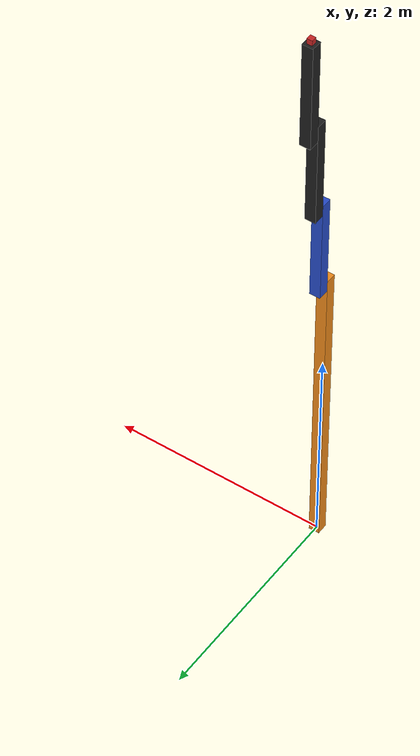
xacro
<?xml version="1.0"?>
<!-- 2 link Manipulator -->
<robot name="2linkrobot" xmlns:xacro="http://www.ros.org/wiki/xacro">

  <!-- Constants for robot dimensions -->
  <xacro:property name="PI" value="3.1415926535897931"/>
  <xacro:property name="mass" value="1" /> <!-- arbitrary value for mass -->
  <xacro:property name="width" value="0.1" /> <!-- Square dimensions (widthxwidth) of beams -->
  <xacro:property name="height1" value="3" /> <!-- Link 1 -->
  <xacro:property name="height2" value="1" /> <!-- Link 2 -->
  <xacro:property name="height3" value="1" /> <!-- Link 3 -->
  <xacro:property name="height4" value="1" /> <!-- Link 3 -->
  <xacro:property name="axel_offset" value="0.05" /> <!-- Space btw top of beam and the each joint -->

  <!-- Used for fixing robot to world -->
  <link name="world"/>

  <joint name="fixed" type="fixed">
    <parent link="world"/>
    <child link="link1"/>
  </joint>

  <!-- Base Link -->
  <link name="link1">
    <collision>
      <origin xyz="0 0 ${height1/2}" rpy="0 0 0"/>
      <geometry>
	<box size="${width} ${width} ${height1}"/>
      </geometry>
    </collision>

    <visual>
      <origin xyz="0 0 ${height1/2}" rpy="0 0 0"/>
      <geometry>
	<box size="${width} ${width} ${height1}"/>
      </geometry>
      <material name="orange"/>
    </visual>

    <inertial>
      <origin xyz="0 0 ${height1/2}" rpy="0 0 0"/>
      <mass value="${mass}"/>
      <inertia
	  ixx="${mass / 12.0 * (width*width + height1*height1)}" ixy="0.0" ixz="0.0"
	  iyy="${mass / 12.0 * (height1*height1 + width*width)}" iyz="0.0"
	  izz="${mass / 12.0 * (width*width + width*width)}"/>
    </inertial>
  </link>

  <joint name="joint1" type="continuous">
    <parent link="link1"/>
    <child link="link2"/>
    <origin xyz="0 ${width} ${height1 - axel_offset}" rpy="0 0 0"/>
    <axis xyz="0 1 0"/>
    <dynamics damping="0.7"/>
  </joint>

  <!-- Link 2 -->
  <link name="link2">
    <collision>
      <origin xyz="0 0 ${height2/2 - axel_offset}" rpy="0 0 0"/>
      <geometry>
	      <box size="${width} ${width} ${height2}"/>
      </geometry>
    </collision>

    <visual>
      <origin xyz="0 0 ${height2/2 - axel_offset}" rpy="0 0 0"/>
      <geometry>
	<box size="${width} ${width} ${height2}"/>
      </geometry>
      <material name="blue"/>
    </visual>

    <inertial>
      <origin xyz="0 0 ${height2/2 - axel_offset}" rpy="0 0 0"/>
      <mass value="${mass}"/>
      <inertia
	  ixx="${mass / 12.0 * (width*width + height2*height2)}" ixy="0.0" ixz="0.0"
	  iyy="${mass / 12.0 * (height2*height2 + width*width)}" iyz="0.0"
	  izz="${mass / 12.0 * (width*width + width*width)}"/>
    </inertial>
  </link>

  <joint name="joint2" type="continuous">
    <parent link="link2"/>
    <child link="link3"/>
    <origin xyz="0 ${width} ${height2 - axel_offset*2}" rpy="0 0 0"/>
    <axis xyz="0 1 0"/>
    <dynamics damping="0.7"/>
  </joint>

  <!-- Link 3 -->
  <link name="link3">
    <collision>
      <origin xyz="0 0 ${height3/2 - axel_offset}" rpy="0 0 0"/>
      <geometry>
	      <box size="${width} ${width} ${height3}"/>
      </geometry>
    </collision>

    <visual>
      <origin xyz="0 0 ${height3/2 - axel_offset}" rpy="0 0 0"/>
      <geometry>
	    <box size="${width} ${width} ${height3}"/>
      </geometry>
      <material name="black"/>
    </visual>

    <inertial>
      <origin xyz="0 0 ${height3/2 - axel_offset}" rpy="0 0 0"/>
      <mass value="${mass}"/>
      <inertia
	  ixx="${mass / 12.0 * (width*width + height3*height3)}" ixy="0.0" ixz="0.0"
	  iyy="${mass / 12.0 * (height3*height3 + width*width)}" iyz="0.0"
	  izz="${mass / 12.0 * (width*width + width*width)}"/>
    </inertial>
  </link>

  <joint name="joint3" type="continuous">
    <parent link="link3"/>
    <child link="link4"/>
    <origin xyz="0 ${width} ${height3 - axel_offset*3}" rpy="0 0 0"/>
    <axis xyz="0 1 0"/>
    <dynamics damping="0.7"/>
  </joint>

  <!-- Link 4 -->
  <link name="link4">
    <collision>
      <origin xyz="0 0 ${height4/2 - axel_offset}" rpy="0 0 0"/>
      <geometry>
	      <box size="${width} ${width} ${height4}"/>
      </geometry>
    </collision>

    <visual>
      <origin xyz="0 0 ${height4/2 - axel_offset}" rpy="0 0 0"/>
      <geometry>
	    <box size="${width} ${width} ${height3}"/>
      </geometry>
      <material name="black"/>
    </visual>

    <inertial>
      <origin xyz="0 0 ${height4/2 - axel_offset}" rpy="0 0 0"/>
      <mass value="${mass}"/>
      <inertia
	  ixx="${mass / 12.0 * (width*width + height4*height4)}" ixy="0.0" ixz="0.0"
	  iyy="${mass / 12.0 * (height4*height4 + width*width)}" iyz="0.0"
	  izz="${mass / 12.0 * (width*width + width*width)}"/>
    </inertial>
  </link>

  <joint name="ee_fixed_joint" type="fixed">
    <origin xyz="0 0 ${height4 - axel_offset}" rpy="0 0 0"/>
    <parent link="link4"/>
    <child link="ee_link"/>
  </joint>

  <!-- end-effector link -->
  <link name="ee_link">
    <collision>
      <origin xyz="0 0 0.025" rpy="0 0 0"/>
      <geometry>
	    <box size="0.05 0.05 0.05"/>
      </geometry>
    </collision>

    <visual>
      <origin xyz="0 0 0.025" rpy="0 0 0"/>
      <geometry>
	      <box size="0.05 0.05 0.05"/>
      </geometry>
      <material name="red"/>
    </visual>

    <inertial>
      <mass value="1e-5" />
      <origin xyz="0 0 0.025" rpy="0 0 0"/>
      <inertia ixx="1e-6" ixy="0" ixz="0" iyy="1e-6" iyz="0" izz="1e-6" />
    </inertial>
  </link>

</robot>
